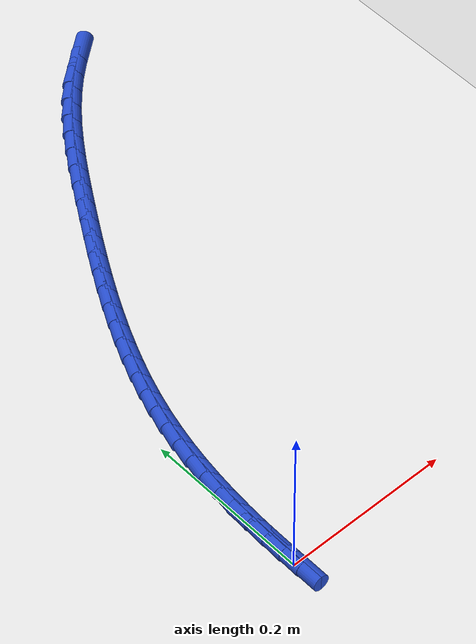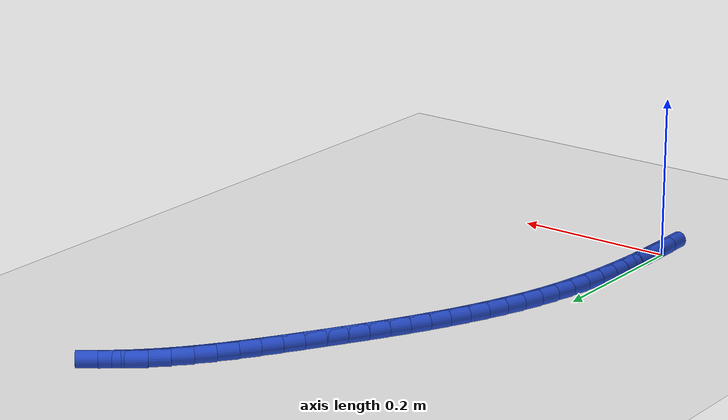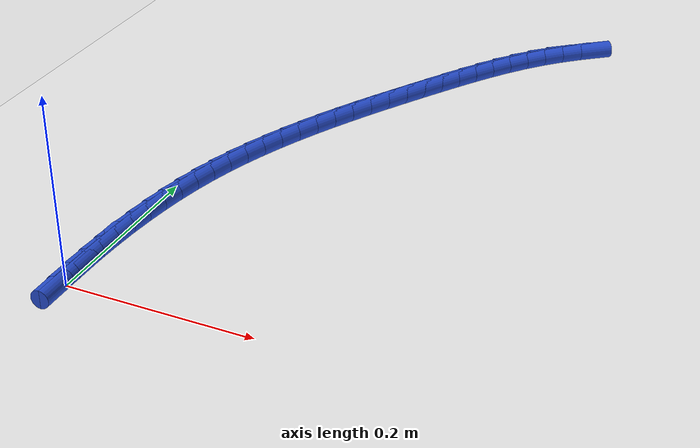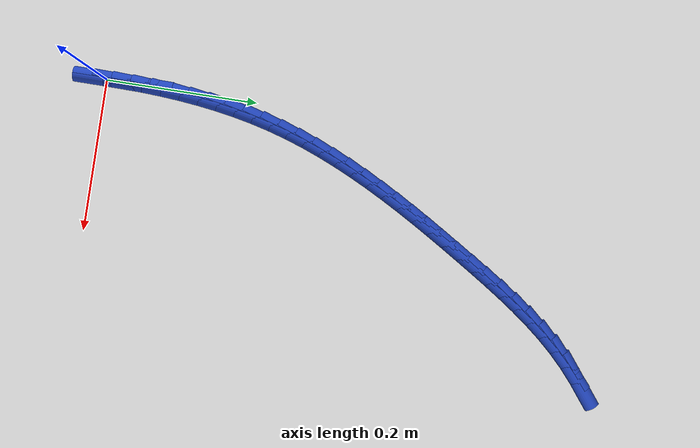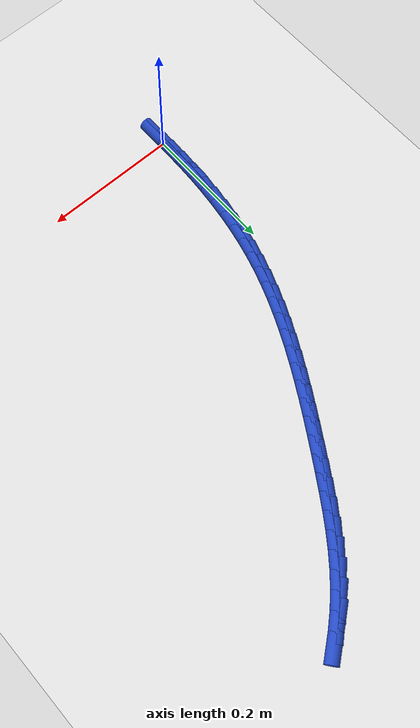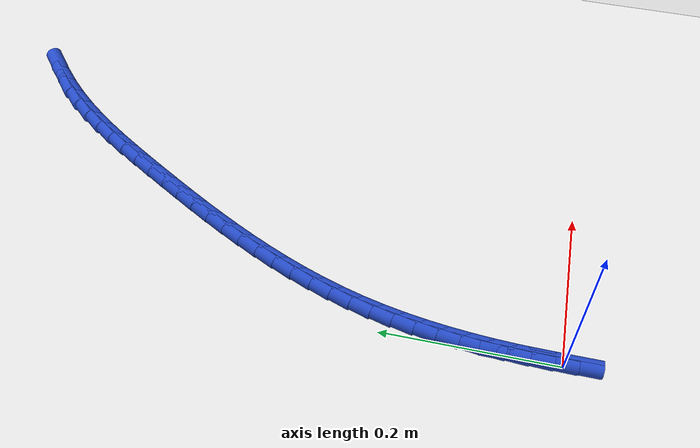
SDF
<sdf version="1.6">
 <world name="default">
  <model name="ground_plane">
   <static>1</static>
   <link name="link">
    <collision name="collision">
     <geometry><plane><normal>0 0 1</normal><size>100 100</size></plane></geometry>
     <surface><friction><ode><mu>100</mu><mu2>50</mu2></ode></friction></surface>
    </collision>
    <visual name="visual">
     <cast_shadows>0</cast_shadows>
     <geometry><plane><normal>0 0 1</normal><size>100 100</size></plane></geometry>
     <material>
      <script><uri>file://media/materials/scripts/gazebo.material</uri><name>Gazebo/WhiteGlow</name></script>
     </material>
    </visual>
   </link>
  </model>
  <model name="line">
   <link name="link_0">
    <pose>1.3010426069826053e-17 6.938893903907228e-18 0.01 0 1.57 1.5672710276396127</pose>
    <collision name="collision">
     <geometry><cylinder><radius>0.01</radius><length>0.08</length></cylinder></geometry>
    </collision>
    <visual name="visual">
     <material>
      <script><name>Gazebo/Blue</name><uri>file://media/materials/scripts/gazebo.material</uri></script>
     </material>
     <geometry><cylinder><radius>0.01</radius><length>0.08</length></cylinder></geometry>
    </visual>
   </link>
   <link name="link_1">
    <pose>8.916181260796282e-05 0.02529188001371106 0.01 0 1.57 1.5455889791197208</pose>
    <collision name="collision">
     <geometry><cylinder><radius>0.01</radius><length>0.08</length></cylinder></geometry>
    </collision>
    <visual name="visual">
     <material>
      <script><name>Gazebo/Blue</name><uri>file://media/materials/scripts/gazebo.material</uri></script>
     </material>
     <geometry><cylinder><radius>0.01</radius><length>0.08</length></cylinder></geometry>
    </visual>
   </link>
   <link name="link_2">
    <pose>0.0007263019309446944 0.05056249445309953 0.01 0 1.57 1.5216804252709202</pose>
    <collision name="collision">
     <geometry><cylinder><radius>0.01</radius><length>0.08</length></cylinder></geometry>
    </collision>
    <visual name="visual">
     <material>
      <script><name>Gazebo/Blue</name><uri>file://media/materials/scripts/gazebo.material</uri></script>
     </material>
     <geometry><cylinder><radius>0.01</radius><length>0.08</length></cylinder></geometry>
    </visual>
   </link>
   <link name="link_3">
    <pose>0.001965688934207234 0.07577612555371355 0.01 0 1.57 1.4954681000612848</pose>
    <collision name="collision">
     <geometry><cylinder><radius>0.01</radius><length>0.08</length></cylinder></geometry>
    </collision>
    <visual name="visual">
     <material>
      <script><name>Gazebo/Blue</name><uri>file://media/materials/scripts/gazebo.material</uri></script>
     </material>
     <geometry><cylinder><radius>0.01</radius><length>0.08</length></cylinder></geometry>
    </visual>
   </link>
   <link name="link_4">
    <pose>0.0038615914015926065 0.10089705555110126 0.01 0 1.57 1.4668733684894117</pose>
    <collision name="collision">
     <geometry><cylinder><radius>0.01</radius><length>0.08</length></cylinder></geometry>
    </collision>
    <visual name="visual">
     <material>
      <script><name>Gazebo/Blue</name><uri>file://media/materials/scripts/gazebo.material</uri></script>
     </material>
     <geometry><cylinder><radius>0.01</radius><length>0.08</length></cylinder></geometry>
    </visual>
   </link>
   <link name="link_5">
    <pose>0.0064682779122978325 0.12588956668081078 0.01 0 1.57 1.4358201870816005</pose>
    <collision name="collision">
     <geometry><cylinder><radius>0.01</radius><length>0.08</length></cylinder></geometry>
    </collision>
    <visual name="visual">
     <material>
      <script><name>Gazebo/Blue</name><uri>file://media/materials/scripts/gazebo.material</uri></script>
     </material>
     <geometry><cylinder><radius>0.01</radius><length>0.08</length></cylinder></geometry>
    </visual>
   </link>
   <link name="link_6">
    <pose>0.009840017045519945 0.15071794117839038 0.01 0 1.57 1.4022399600396902</pose>
    <collision name="collision">
     <geometry><cylinder><radius>0.01</radius><length>0.08</length></cylinder></geometry>
    </collision>
    <visual name="visual">
     <material>
      <script><name>Gazebo/Blue</name><uri>file://media/materials/scripts/gazebo.material</uri></script>
     </material>
     <geometry><cylinder><radius>0.01</radius><length>0.08</length></cylinder></geometry>
    </visual>
   </link>
   <link name="link_7">
    <pose>0.014031077380455963 0.17534646127938808 0.01 0 1.57 1.366077375018082</pose>
    <collision name="collision">
     <geometry><cylinder><radius>0.01</radius><length>0.08</length></cylinder></geometry>
    </collision>
    <visual name="visual">
     <material>
      <script><name>Gazebo/Blue</name><uri>file://media/materials/scripts/gazebo.material</uri></script>
     </material>
     <geometry><cylinder><radius>0.01</radius><length>0.08</length></cylinder></geometry>
    </visual>
   </link>
   <link name="link_8">
    <pose>0.01909572749630291 0.19973940921935207 0.01 0 1.57 1.3272972233055258</pose>
    <collision name="collision">
     <geometry><cylinder><radius>0.01</radius><length>0.08</length></cylinder></geometry>
    </collision>
    <visual name="visual">
     <material>
      <script><name>Gazebo/Blue</name><uri>file://media/materials/scripts/gazebo.material</uri></script>
     </material>
     <geometry><cylinder><radius>0.01</radius><length>0.08</length></cylinder></geometry>
    </visual>
   </link>
   <link name="link_9">
    <pose>0.025088235972257802 0.22386106723383054 0.01 0 1.57 1.2862354107738991</pose>
    <collision name="collision">
     <geometry><cylinder><radius>0.01</radius><length>0.08</length></cylinder></geometry>
    </collision>
    <visual name="visual">
     <material>
      <script><name>Gazebo/Blue</name><uri>file://media/materials/scripts/gazebo.material</uri></script>
     </material>
     <geometry><cylinder><radius>0.01</radius><length>0.08</length></cylinder></geometry>
    </visual>
   </link>
   <link name="link_10">
    <pose>0.03205500438986558 0.24767916917425398 0.01 0 1.57 1.2462751749539023</pose>
    <collision name="collision">
     <geometry><cylinder><radius>0.01</radius><length>0.08</length></cylinder></geometry>
    </collision>
    <visual name="visual">
     <material>
      <script><name>Gazebo/Blue</name><uri>file://media/materials/scripts/gazebo.material</uri></script>
     </material>
     <geometry><cylinder><radius>0.01</radius><length>0.08</length></cylinder></geometry>
    </visual>
   </link>
   <link name="link_11">
    <pose>0.03996605973799737 0.27119495795977494 0.01 0 1.57 1.2093929623774209</pose>
    <collision name="collision">
     <geometry><cylinder><radius>0.01</radius><length>0.08</length></cylinder></geometry>
    </collision>
    <visual name="visual">
     <material>
      <script><name>Gazebo/Blue</name><uri>file://media/materials/scripts/gazebo.material</uri></script>
     </material>
     <geometry><cylinder><radius>0.01</radius><length>0.08</length></cylinder></geometry>
    </visual>
   </link>
   <link name="link_12">
    <pose>0.04874848270225565 0.2944285190399502 0.01 0 1.57 1.175675845342847</pose>
    <collision name="collision">
     <geometry><cylinder><radius>0.01</radius><length>0.08</length></cylinder></geometry>
    </collision>
    <visual name="visual">
     <material>
      <script><name>Gazebo/Blue</name><uri>file://media/materials/scripts/gazebo.material</uri></script>
     </material>
     <geometry><cylinder><radius>0.01</radius><length>0.08</length></cylinder></geometry>
    </visual>
   </link>
   <link name="link_13">
    <pose>0.05832887542737812 0.31740014782235704 0.01 0 1.57 1.1451482526437538</pose>
    <collision name="collision">
     <geometry><cylinder><radius>0.01</radius><length>0.08</length></cylinder></geometry>
    </collision>
    <visual name="visual">
     <material>
      <script><name>Gazebo/Blue</name><uri>file://media/materials/scripts/gazebo.material</uri></script>
     </material>
     <geometry><cylinder><radius>0.01</radius><length>0.08</length></cylinder></geometry>
    </visual>
   </link>
   <link name="link_14">
    <pose>0.0686338400581025 0.3401301397145725 0.01 0 1.57 1.1178028867641747</pose>
    <collision name="collision">
     <geometry><cylinder><radius>0.01</radius><length>0.08</length></cylinder></geometry>
    </collision>
    <visual name="visual">
     <material>
      <script><name>Gazebo/Blue</name><uri>file://media/materials/scripts/gazebo.material</uri></script>
     </material>
     <geometry><cylinder><radius>0.01</radius><length>0.08</length></cylinder></geometry>
    </visual>
   </link>
   <link name="link_15">
    <pose>0.07958997873916643 0.36263879012417366 0.01 0 1.57 1.0936101454857605</pose>
    <collision name="collision">
     <geometry><cylinder><radius>0.01</radius><length>0.08</length></cylinder></geometry>
    </collision>
    <visual name="visual">
     <material>
      <script><name>Gazebo/Blue</name><uri>file://media/materials/scripts/gazebo.material</uri></script>
     </material>
     <geometry><cylinder><radius>0.01</radius><length>0.08</length></cylinder></geometry>
    </visual>
   </link>
   <link name="link_16">
    <pose>0.09112389361530761 0.38494639445873746 0.01 0 1.57 1.0725265043926129</pose>
    <collision name="collision">
     <geometry><cylinder><radius>0.01</radius><length>0.08</length></cylinder></geometry>
    </collision>
    <visual name="visual">
     <material>
      <script><name>Gazebo/Blue</name><uri>file://media/materials/scripts/gazebo.material</uri></script>
     </material>
     <geometry><cylinder><radius>0.01</radius><length>0.08</length></cylinder></geometry>
    </visual>
   </link>
   <link name="link_17">
    <pose>0.10316218683126376 0.4070732481258412 0.01 0 1.57 1.0545016699259593</pose>
    <collision name="collision">
     <geometry><cylinder><radius>0.01</radius><length>0.08</length></cylinder></geometry>
    </collision>
    <visual name="visual">
     <material>
      <script><name>Gazebo/Blue</name><uri>file://media/materials/scripts/gazebo.material</uri></script>
     </material>
     <geometry><cylinder><radius>0.01</radius><length>0.08</length></cylinder></geometry>
    </visual>
   </link>
   <link name="link_18">
    <pose>0.11563146053177244 0.4290396465330616 0.01 0 1.57 1.039484480454887</pose>
    <collision name="collision">
     <geometry><cylinder><radius>0.01</radius><length>0.08</length></cylinder></geometry>
    </collision>
    <visual name="visual">
     <material>
      <script><name>Gazebo/Blue</name><uri>file://media/materials/scripts/gazebo.material</uri></script>
     </material>
     <geometry><cylinder><radius>0.01</radius><length>0.08</length></cylinder></geometry>
    </visual>
   </link>
   <link name="link_19">
    <pose>0.12845831686157147 0.450865885087976 0.01 0 1.57 1.027427636774409</pose>
    <collision name="collision">
     <geometry><cylinder><radius>0.01</radius><length>0.08</length></cylinder></geometry>
    </collision>
    <visual name="visual">
     <material>
      <script><name>Gazebo/Blue</name><uri>file://media/materials/scripts/gazebo.material</uri></script>
     </material>
     <geometry><cylinder><radius>0.01</radius><length>0.08</length></cylinder></geometry>
    </visual>
   </link>
   <link name="link_20">
    <pose>0.14156935796539846 0.47257225919816126 0.01 0 1.57 1.0182913958750723</pose>
    <collision name="collision">
     <geometry><cylinder><radius>0.01</radius><length>0.08</length></cylinder></geometry>
    </collision>
    <visual name="visual">
     <material>
      <script><name>Gazebo/Blue</name><uri>file://media/materials/scripts/gazebo.material</uri></script>
     </material>
     <geometry><cylinder><radius>0.01</radius><length>0.08</length></cylinder></geometry>
    </visual>
   </link>
   <link name="link_21">
    <pose>0.15489118598799115 0.4941790642711946 0.01 0 1.57 1.0118851558748796</pose>
    <collision name="collision">
     <geometry><cylinder><radius>0.01</radius><length>0.08</length></cylinder></geometry>
    </collision>
    <visual name="visual">
     <material>
      <script><name>Gazebo/Blue</name><uri>file://media/materials/scripts/gazebo.material</uri></script>
     </material>
     <geometry><cylinder><radius>0.01</radius><length>0.08</length></cylinder></geometry>
    </visual>
   </link>
   <link name="link_22">
    <pose>0.16835364390508534 0.515704058292417 0.01 0 1.57 1.0033464394424578</pose>
    <collision name="collision">
     <geometry><cylinder><radius>0.01</radius><length>0.08</length></cylinder></geometry>
    </collision>
    <visual name="visual">
     <material>
      <script><name>Gazebo/Blue</name><uri>file://media/materials/scripts/gazebo.material</uri></script>
     </material>
     <geometry><cylinder><radius>0.01</radius><length>0.08</length></cylinder></geometry>
    </visual>
   </link>
   <link name="link_23">
    <pose>0.18198381784760354 0.5370888623105591 0.01 0 1.57 0.9870378730563506</pose>
    <collision name="collision">
     <geometry><cylinder><radius>0.01</radius><length>0.08</length></cylinder></geometry>
    </collision>
    <visual name="visual">
     <material>
      <script><name>Gazebo/Blue</name><uri>file://media/materials/scripts/gazebo.material</uri></script>
     </material>
     <geometry><cylinder><radius>0.01</radius><length>0.08</length></cylinder></geometry>
    </visual>
   </link>
   <link name="link_24">
    <pose>0.195920623145529 0.5581875402334536 0.01 0 1.57 0.9625015057356455</pose>
    <collision name="collision">
     <geometry><cylinder><radius>0.01</radius><length>0.08</length></cylinder></geometry>
    </collision>
    <visual name="visual">
     <material>
      <script><name>Gazebo/Blue</name><uri>file://media/materials/scripts/gazebo.material</uri></script>
     </material>
     <geometry><cylinder><radius>0.01</radius><length>0.08</length></cylinder></geometry>
    </visual>
   </link>
   <link name="link_25">
    <pose>0.21030915104220657 0.5788493205116382 0.01 0 1.57 0.9295384138976541</pose>
    <collision name="collision">
     <geometry><cylinder><radius>0.01</radius><length>0.08</length></cylinder></geometry>
    </collision>
    <visual name="visual">
     <material>
      <script><name>Gazebo/Blue</name><uri>file://media/materials/scripts/gazebo.material</uri></script>
     </material>
     <geometry><cylinder><radius>0.01</radius><length>0.08</length></cylinder></geometry>
    </visual>
   </link>
   <link name="link_26">
    <pose>0.22529449278098138 0.5989234315956501 0.01 0 1.57 0.8879499518997398</pose>
    <collision name="collision">
     <geometry><cylinder><radius>0.01</radius><length>0.08</length></cylinder></geometry>
    </collision>
    <visual name="visual">
     <material>
      <script><name>Gazebo/Blue</name><uri>file://media/materials/scripts/gazebo.material</uri></script>
     </material>
     <geometry><cylinder><radius>0.01</radius><length>0.08</length></cylinder></geometry>
    </visual>
   </link>
   <link name="link_27">
    <pose>0.24102173960519843 0.6182591019360267 0.01 0 1.57 0.8376090340198942</pose>
    <collision name="collision">
     <geometry><cylinder><radius>0.01</radius><length>0.08</length></cylinder></geometry>
    </collision>
    <visual name="visual">
     <material>
      <script><name>Gazebo/Blue</name><uri>file://media/materials/scripts/gazebo.material</uri></script>
     </material>
     <geometry><cylinder><radius>0.01</radius><length>0.08</length></cylinder></geometry>
    </visual>
   </link>
   <link name="link_28">
    <pose>0.25763598275820276 0.6367055599833061 0.01 0 1.57 0.7785646178513194</pose>
    <collision name="collision">
     <geometry><cylinder><radius>0.01</radius><length>0.08</length></cylinder></geometry>
    </collision>
    <visual name="visual">
     <material>
      <script><name>Gazebo/Blue</name><uri>file://media/materials/scripts/gazebo.material</uri></script>
     </material>
     <geometry><cylinder><radius>0.01</radius><length>0.08</length></cylinder></geometry>
    </visual>
   </link>
   <link name="link_29">
    <pose>0.27528215511007487 0.6541121936600438 0.01 0 1.57 0.7159772517470793</pose>
    <collision name="collision">
     <geometry><cylinder><radius>0.01</radius><length>0.08</length></cylinder></geometry>
    </collision>
    <visual name="visual">
     <material>
      <script><name>Gazebo/Blue</name><uri>file://media/materials/scripts/gazebo.material</uri></script>
     </material>
     <geometry><cylinder><radius>0.01</radius><length>0.08</length></cylinder></geometry>
    </visual>
   </link>
   <link name="link_30">
    <pose>0.29402027123768876 0.6704138983236908 0.01 0 1.57 0.6630237667221597</pose>
    <collision name="collision">
     <geometry><cylinder><radius>0.01</radius><length>0.08</length></cylinder></geometry>
    </collision>
    <visual name="visual">
     <material>
      <script><name>Gazebo/Blue</name><uri>file://media/materials/scripts/gazebo.material</uri></script>
     </material>
     <geometry><cylinder><radius>0.01</radius><length>0.08</length></cylinder></geometry>
    </visual>
   </link>
   <link name="link_270">
    <pose>1.3877787807814457e-17 -4.85722573273506e-17 0.01 0 1.57 1.5678334053947687</pose>
    <collision name="collision">
     <geometry><cylinder><radius>0.01</radius><length>0.08</length></cylinder></geometry>
    </collision>
    <visual name="visual">
     <material>
      <script><name>Gazebo/Blue</name><uri>file://media/materials/scripts/gazebo.material</uri></script>
     </material>
     <geometry><cylinder><radius>0.01</radius><length>0.08</length></cylinder></geometry>
    </visual>
   </link>
   <link name="link_271">
    <pose>7.494268501866347e-05 0.025293436980955184 0.01 0 1.57 1.5495347350120772</pose>
    <collision name="collision">
     <geometry><cylinder><radius>0.01</radius><length>0.08</length></cylinder></geometry>
    </collision>
    <visual name="visual">
     <material>
      <script><name>Gazebo/Blue</name><uri>file://media/materials/scripts/gazebo.material</uri></script>
     </material>
     <geometry><cylinder><radius>0.01</radius><length>0.08</length></cylinder></geometry>
    </visual>
   </link>
   <link name="link_272">
    <pose>0.0006125489102302944 0.0505749501910505 0.01 0 1.57 1.5586852133235927</pose>
    <collision name="collision">
     <geometry><cylinder><radius>0.01</radius><length>0.08</length></cylinder></geometry>
    </collision>
    <visual name="visual">
     <material>
      <script><name>Gazebo/Blue</name><uri>file://media/materials/scripts/gazebo.material</uri></script>
     </material>
     <geometry><cylinder><radius>0.01</radius><length>0.08</length></cylinder></geometry>
    </visual>
   </link>
  </model>
 </world>
</sdf>
